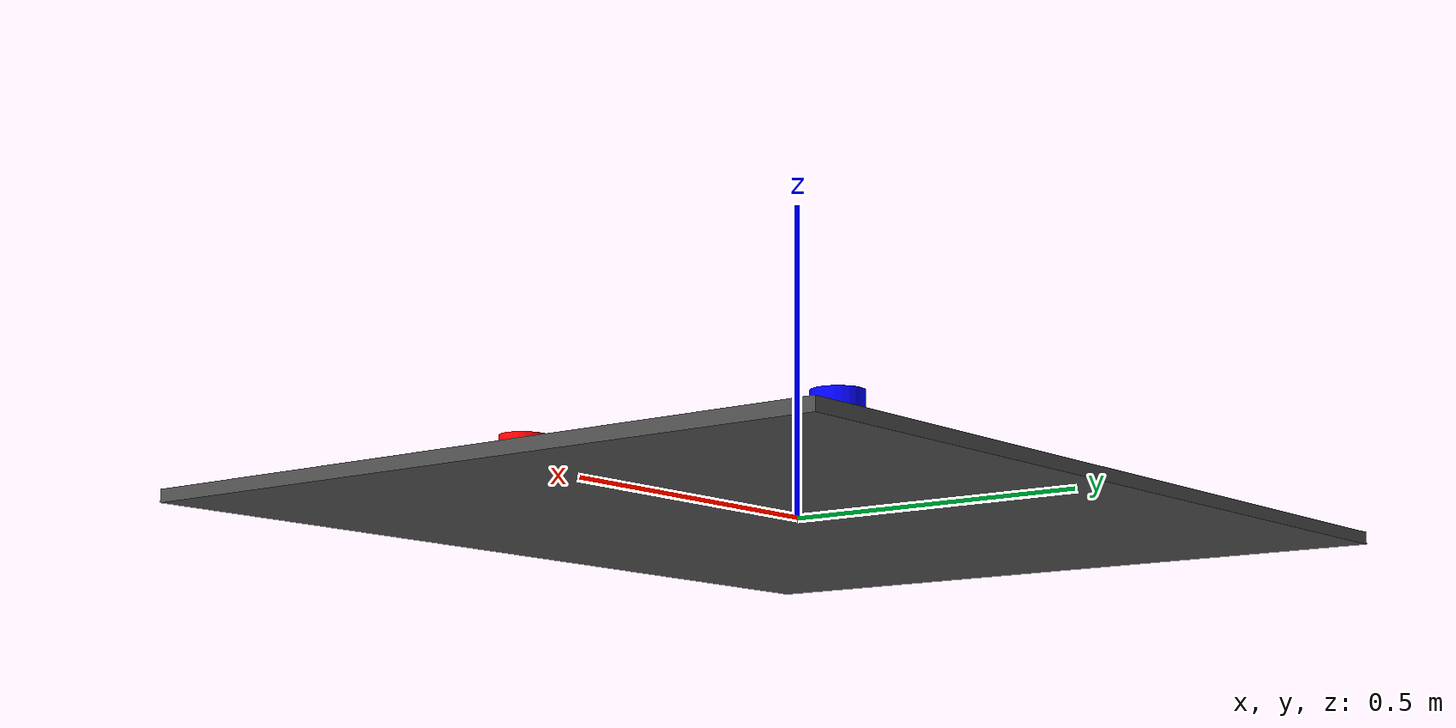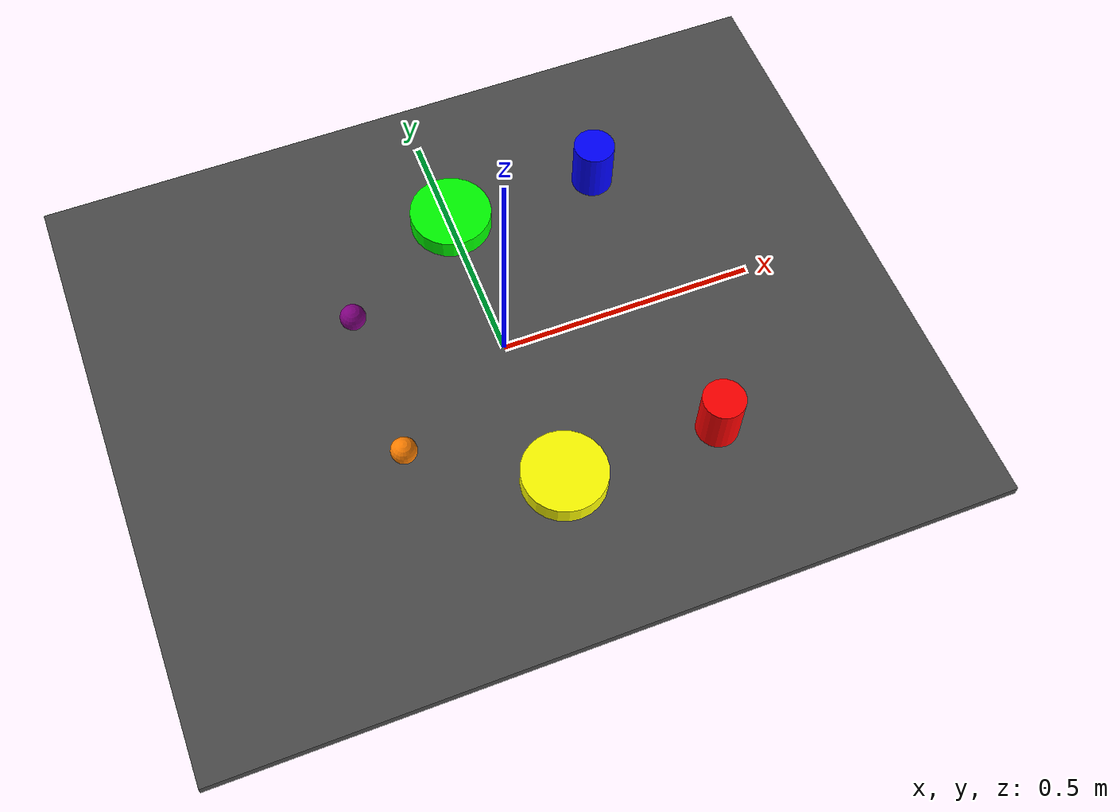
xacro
<?xml version="1.0"?>
<robot name="posha_workspace">

  <!-- Base Platform -->
  <link name="workspace_base">
    <visual>
      <geometry>
        <box size="1.5 1.2 0.02"/>
      </geometry>
      <material name="gray">
        <color rgba="0.3 0.3 0.3 1.0"/>
      </material>
    </visual>
    <collision>
      <geometry>
        <box size="1.5 1.2 0.02"/>
      </geometry>
    </collision>
  </link>

  <!-- Container 1 -->
  <link name="container_1">
    <visual>
      <geometry>
        <cylinder length="0.12" radius="0.04"/>
      </geometry>
      <material name="blue">
        <color rgba="0.0 0.0 1.0 1.0"/>
      </material>
    </visual>
    <collision>
      <geometry>
        <cylinder length="0.12" radius="0.04"/>
      </geometry>
    </collision>
  </link>

  <joint name="container_1_joint" type="fixed">
    <parent link="workspace_base"/>
    <child link="container_1"/>
    <origin xyz="0.3 0.3 0.06" rpy="0 0 0"/>
  </joint>

  <!-- Container 5 -->
  <link name="container_5">
    <visual>
      <geometry>
        <cylinder length="0.12" radius="0.04"/>
      </geometry>
      <material name="red">
        <color rgba="1.0 0.0 0.0 1.0"/>
      </material>
    </visual>
    <collision>
      <geometry>
        <cylinder length="0.12" radius="0.04"/>
      </geometry>
    </collision>
  </link>

  <joint name="container_5_joint" type="fixed">
    <parent link="workspace_base"/>
    <child link="container_5"/>
    <origin xyz="0.3 -0.3 0.06" rpy="0 0 0"/>
  </joint>

  <!-- Pan 1 -->
  <link name="pan_1">
    <visual>
      <geometry>
        <cylinder length="0.05" radius="0.08"/>
      </geometry>
      <material name="yellow">
        <color rgba="1.0 1.0 0.0 1.0"/>
      </material>
    </visual>
    <collision>
      <geometry>
        <cylinder length="0.05" radius="0.08"/>
      </geometry>
    </collision>
  </link>

  <joint name="pan_1_joint" type="fixed">
    <parent link="workspace_base"/>
    <child link="pan_1"/>
    <origin xyz="0.0 -0.3 0.025" rpy="0 0 0"/>
  </joint>

  <!-- Pan 2 -->
  <link name="pan_2">
    <visual>
      <geometry>
        <cylinder length="0.05" radius="0.08"/>
      </geometry>
      <material name="green">
        <color rgba="0.0 1.0 0.0 1.0"/>
      </material>
    </visual>
    <collision>
      <geometry>
        <cylinder length="0.05" radius="0.08"/>
      </geometry>
    </collision>
  </link>

  <joint name="pan_2_joint" type="fixed">
    <parent link="workspace_base"/>
    <child link="pan_2"/>
    <origin xyz="0.0 0.3 0.025" rpy="0 0 0"/>
  </joint>

  <!-- Spice Pod 1 -->
  <link name="spice_pod_1">
    <visual>
      <geometry>
        <sphere radius="0.025"/>
      </geometry>
      <material name="purple">
        <color rgba="0.5 0.0 0.5 1.0"/>
      </material>
    </visual>
    <collision>
      <geometry>
        <sphere radius="0.025"/>
      </geometry>
    </collision>
  </link>

  <joint name="spice_pod_1_joint" type="fixed">
    <parent link="workspace_base"/>
    <child link="spice_pod_1"/>
    <origin xyz="-0.25 0.15 0.025" rpy="0 0 0"/>
  </joint>

  <!-- Spice Pod 19 -->
  <link name="spice_pod_19">
    <visual>
      <geometry>
        <sphere radius="0.025"/>
      </geometry>
      <material name="orange">
        <color rgba="1.0 0.5 0.0 1.0"/>
      </material>
    </visual>
    <collision>
      <geometry>
        <sphere radius="0.025"/>
      </geometry>
    </collision>
  </link>

  <joint name="spice_pod_19_joint" type="fixed">
    <parent link="workspace_base"/>
    <child link="spice_pod_19"/>
    <origin xyz="-0.25 -0.15 0.025" rpy="0 0 0"/>
  </joint>

</robot>
